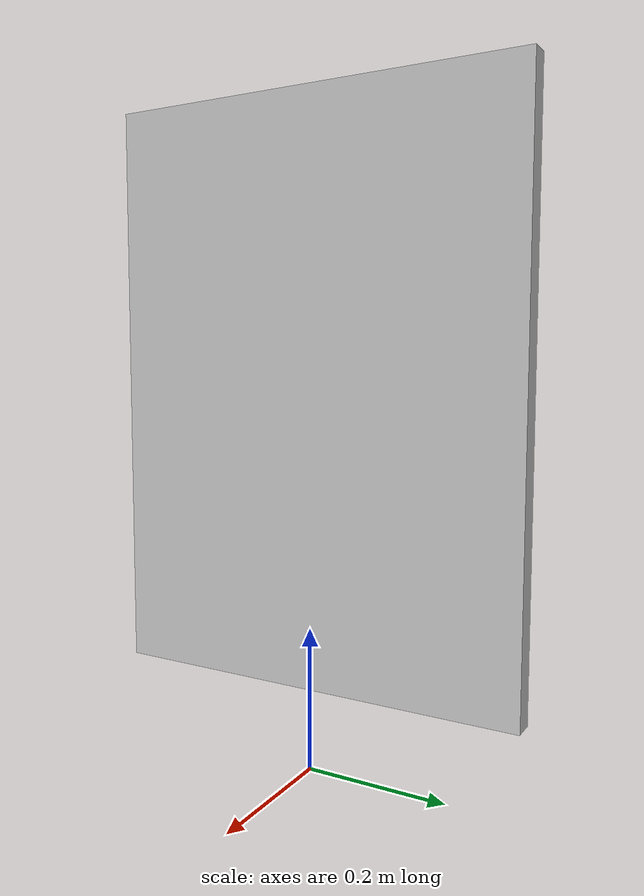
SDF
<?xml version="1.0"?>
<sdf version="1.6">
  <model name="perception_demo_poster">
    <static>true</static>
    <link name="poster">
      <pose>0 0 0.52 0 0 0</pose>
      <collision name="collision">
        <geometry>
          <box><size>0.03 0.60 0.80</size></box>
        </geometry>
      </collision>
      <visual name="visual">
        <cast_shadows>false</cast_shadows>
        <geometry>
          <box><size>0.03 0.60 0.80</size></box>
        </geometry>
        <material>
          <script>
            <uri>model://perception_demo_poster/materials/scripts</uri>
            <uri>model://perception_demo_poster/materials/textures</uri>
            <name>Perception/DemoPoster</name>
          </script>
        </material>
      </visual>
    </link>
  </model>
</sdf>
